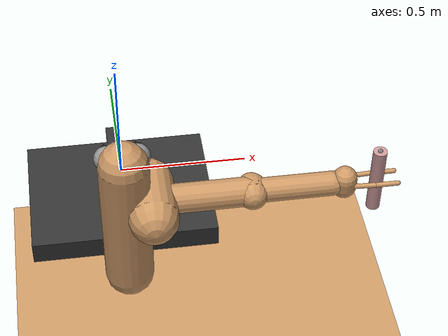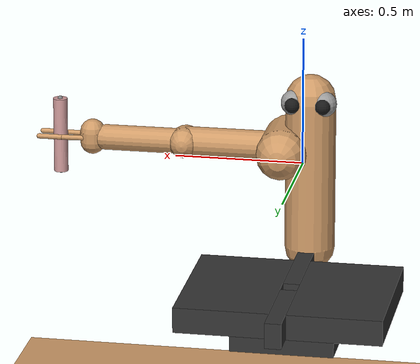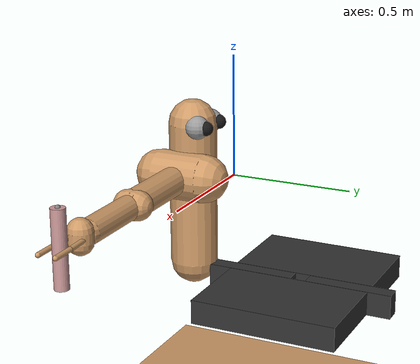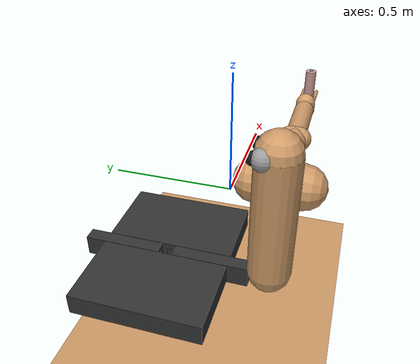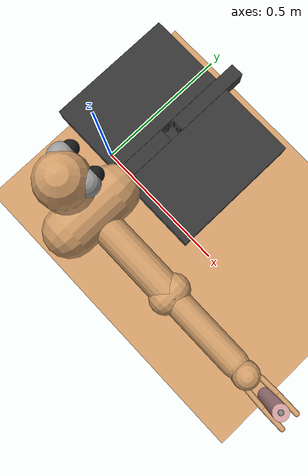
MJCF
<mujoco model="arm3d">

    <compiler inertiafromgeom="true" angle="radian" coordinate="local" />
    <option timestep="0.01" gravity="0 0 0" iterations="20" integrator="RK4" />
	<visual>
        <quality shadowsize="4096"/>
    </visual>

    <default>
        <joint armature="0.04" damping="1" limited="true" />
        <geom friction=".5 .1 .1" margin="0.002" condim="1" contype="0" conaffinity="0" rgba='0.8 0.6 .4 1'/>
    </default>

	 <asset>
        <texture type="skybox" builtin="gradient" width="100" height="100" rgb1=".04 .1 .08"
            rgb2="0 0 0"/>
        <texture name="texgeom" type="cube" builtin="flat" mark="cross" width="127" height="1278"
            rgb1="0.8 0.6 0.4" rgb2="0.8 0.6 0.4" markrgb="1 1 1" random="0.01"/>
        <texture name="texplane" type="2d" builtin="checker" rgb1=".2 .3 .4" rgb2=".1 0.15 0.2"
            width="100" height="100"/>

        <material name='MatPlane' reflectance='0.5' texture="texplane" texrepeat="1 1" texuniform="true"/>
        <material name='geom' texture="texgeom" texuniform="true"/>
    </asset>

    <worldbody>
		<light directional='false' diffuse='.8 .8 .8' specular='0.3 0.3 0.3' pos='0 0 4.0' dir='0 0 -1'/>
		<geom name='floor' pos='0 0 -1.0' size='10 10 0.125' type='plane' material="MatPlane"/>

		<body name="r_shoulder_pan_link" pos="0 -0.188 0">
            <geom name="e1" type="sphere" rgba="0.6 0.6 0.6 1" pos="-0.06 0.05 0.2" size="0.05" />
            <geom name="e2" type="sphere" rgba="0.6 0.6 0.6 1" pos=" 0.06 0.05 0.2" size="0.05" />
            <geom name="e1p" type="sphere" rgba="0.1 0.1 0.1 1" pos="-0.06 0.09 0.2" size="0.03" />
            <geom name="e2p" type="sphere" rgba="0.1 0.1 0.1 1" pos=" 0.06 0.09 0.2" size="0.03" />
            <geom name="sp" type="capsule" fromto="0 0 -0.4 0 0 0.2" size="0.1" />
            <joint name="r_shoulder_pan_joint" type="hinge" pos="0 0 0" axis="0 0 1" range="-2.2854 1.714602" damping="10.0" />

            <body name="r_shoulder_lift_link" pos="0.1 0 0">
                <geom name="sl" type="capsule" fromto="0 -0.1 0 0 0.1 0" size="0.1" />
                <joint name="r_shoulder_lift_joint" type="hinge" pos="0 0 0" axis="0 1 0" range="-0.5236 1.3963" damping="10.0" />

                <body name="r_upper_arm_roll_link" pos="0 0 0">
                    <geom name="uar" type="capsule" fromto="-0.1 0 0 0.1 0 0" size="0.02" />
                    <joint name="r_upper_arm_roll_joint" type="hinge" pos="0 0 0" axis="1 0 0" range="-3.9 0.8" damping="0.1" />

                    <body name="r_upper_arm_link" pos="0 0 0">
                        <geom name="ua" type="capsule" fromto="0 0 0 0.4 0 0" size="0.06" />

                        <body name="r_elbow_flex_link" pos="0.4 0 0">
                            <geom name="ef" type="capsule" fromto="0 -0.02 0 0.0 0.02 0" size="0.06" />
                            <joint name="r_elbow_flex_joint" type="hinge" pos="0 0 0" axis="0 1 0" range="-2.3213 0" damping="1.0" />

                            <body name="r_forearm_roll_link" pos="0 0 0">
                                <geom name="fr" type="capsule" fromto="-0.1 0 0 0.1 0 0" size="0.02" />
                                <joint name="r_forearm_roll_joint" type="hinge" limited="false" pos="0 0 0" axis="1 0 0" damping=".1" />

                                <body name="r_forearm_link" pos="0 0 0">
                                    <geom name="fa" type="capsule" fromto="0 0 0 0.321 0 0" size="0.05" />

                                    <body name="r_wrist_flex_link" pos="0.321 0 0">
                                        <geom name="wf" type="capsule" fromto="0 -0.02 0 0 0.02 0" size="0.01" />
                                        <joint name="r_wrist_flex_joint" type="hinge" pos="0 0 0" axis="0 1 0" range="-2.094 0" damping=".1" />

                                        <body name="r_wrist_roll_link" pos="0 0 0">
                                            <geom name="wr" type="capsule" fromto="-0.02 0 0 0.02 0 0" size="0.01" />
                                            <joint name="r_wrist_roll_joint" type="hinge" pos="0 0 0" limited="false" axis="1 0 0" damping="0.1" />

                                            <body name="r_gripper_palm_link" pos="0 0 0">
                                                <geom name="pl" type="capsule" fromto="0.05 0 -0.02 0.05 0 0.02" size="0.05" />

                                                <body name="r_gripper_tool_frame" pos="0.18 0 0">
                                                    <site name="leg_bottom" pos="0 0 -0.15" size="0.01" />
                                                    <site name="leg_top" pos="0 0 0.15" size="0.01" />

                                                    <body name="ball" pos="0 0 0">
                                                        <geom name="ball_geom" rgba="0.8 0.6 0.6 1" type="cylinder" fromto="0 0 -0.15 0 0 0.15" size="0.028" density="2000" contype="2" conaffinity="1" />
                                                    </body>
                                                </body>

                                                <body name="r_gripper_l_finger_link" pos="0.07691 0.03 0">
                                                    <geom name="gf3" type="capsule" fromto="0 0 0 0.09137 0.00495 0" size="0.01" />

                                                    <body name="r_gripper_l_finger_tip_link" pos="0.09137 0.00495 0">
                                                        <geom name="gf4" type="capsule" fromto="0 0 0 0.09137 0.0 0" size="0.01" />
                                                    </body>
                                                </body>

                                                <body name="r_gripper_r_finger_link" pos="0.07691 -0.03 0">
                                                    <geom name="gf1" type="capsule" fromto="0 0 0 0.09137 -0.00495 0" size="0.01" />

                                                    <body name="r_gripper_r_finger_tip_link" pos="0.09137 -0.00495 0">
                                                        <geom name="gf2" type="capsule" fromto="0 0 0 0.09137 0.0 0" size="0.01" />
                                                    </body>
                                                </body>
                                            </body>
                                        </body>
                                    </body>
                                </body>
                            </body>
                        </body>
                    </body>
                </body>
            </body>
        </body>

        <body name="g1" pos="0.034 0.3 -0.47" axisangle="0 1 0 0.05">
            <geom name="g1" rgba="0.2 0.2 0.2 1" type="box" size="0.003 0.01 0.05" contype="1" conaffinity="1" />
        </body>

        <body name="g2" pos="-0.034 0.3 -0.47" axisangle="0 1 0 -0.05">
            <geom name="g2" rgba="0.2 0.2 0.2 1" type="box" size="0.003 0.01 0.05" contype="1" conaffinity="1" />
        </body>

        <body name="g3" pos="0.0 0.334 -0.47" axisangle="1 0 0 -0.05">
            <geom name="g3" rgba="0.2 0.2 0.2 1" type="box" size="0.01 0.003 0.05" contype="1" conaffinity="1" />
        </body>

        <body name="g4" pos="0.0 0.266 -0.47" axisangle="1 0 0 0.05">
            <geom name="g4" rgba="0.2 0.2 0.2 1" type="box" size="0.01 0.003 0.05" contype="1" conaffinity="1" />
        </body>

        <body name="fl" pos="0.0 0.3 -0.55">
            <geom name="fl" rgba="0.2 0.2 0.2 1" type="box" size="0.2 0.2 0.05" contype="1" conaffinity="1" />
        </body>

        <body name="w1" pos="0.216 0.3 -0.45">
            <geom name="w1" rgba="0.2 0.2 0.2 1" type="box" size="0.183 0.3 0.05" contype="1" conaffinity="1" />
        </body>

        <body name="w2" pos="-0.216 0.3 -0.45">
            <geom name="w2" rgba="0.2 0.2 0.2 1" type="box" size="0.183 0.3 0.05" contype="1" conaffinity="1" />
        </body>

        <body name="w3" pos="0.0 0.516 -0.45">
            <geom name="w3" rgba="0.2 0.2 0.2 1" type="box" size="0.032 0.183 0.05" contype="1" conaffinity="1" />
        </body>

        <body name="w4" pos="0.0 0.084 -0.45">
            <geom name="w4" rgba="0.2 0.2 0.2 1" type="box" size="0.032 0.183 0.05" contype="1" conaffinity="1" />
        </body>
    </worldbody>

    <actuator>
        <motor joint="r_shoulder_pan_joint" ctrlrange="-100.0 100.0" ctrllimited="true" />
        <motor joint="r_shoulder_lift_joint" ctrlrange="-100.0 100.0" ctrllimited="true" />
        <motor joint="r_upper_arm_roll_joint" ctrlrange="-100.0 100.0" ctrllimited="true" />
        <motor joint="r_elbow_flex_joint" ctrlrange="-100.0 100.0" ctrllimited="true" />
        <motor joint="r_forearm_roll_joint" ctrlrange="-100.0 100.0" ctrllimited="true" />
        <motor joint="r_wrist_flex_joint" ctrlrange="-100.0 100.0" ctrllimited="true" />
        <motor joint="r_wrist_roll_joint" ctrlrange="-100.0 100.0" ctrllimited="true" />
    </actuator>

</mujoco>
